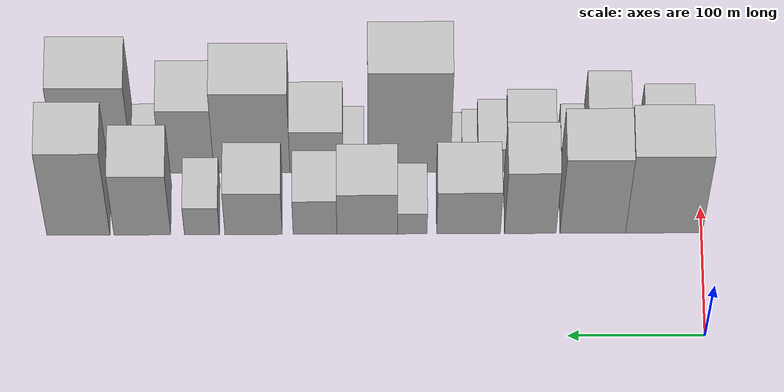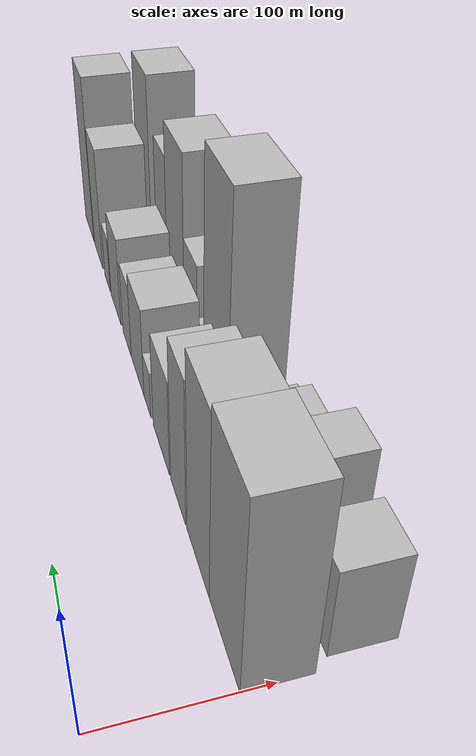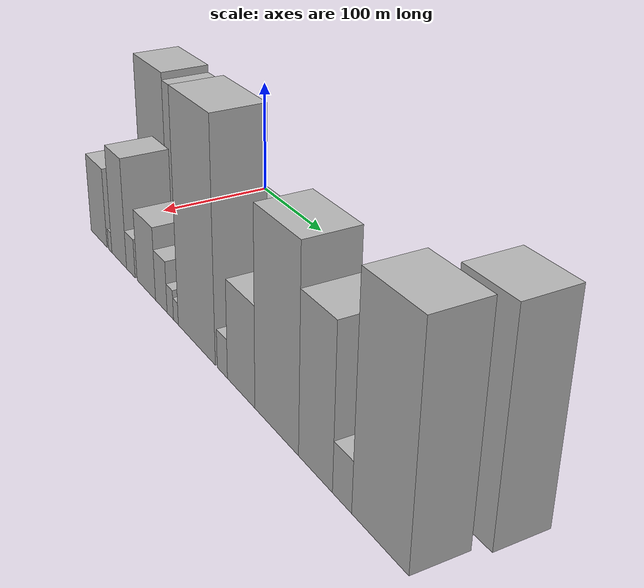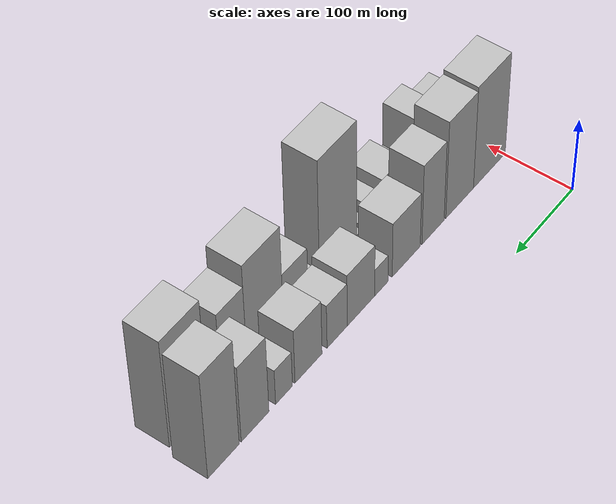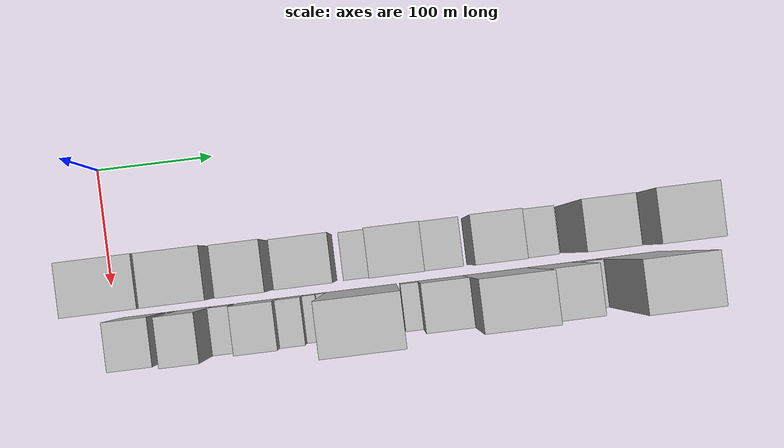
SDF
<sdf version="1.6">
 <world name="default">
  <model name="building_13">
   <static>1</static>
   <pose>100.0000 27.5827 0 0.000000 0.000000 0.000000</pose>
   <link name="link">
    <pose>0 0 72.00 0 0 0</pose>
    <collision name="collision"><geometry><box><size>40.0000 56.3216 144.0000</size></box></geometry></collision>
    <visual name="visual">
     <cast_shadows>0</cast_shadows>
     <geometry><box><size>40.0000 56.3216 144.0000</size></box></geometry>
     <material>
      <script>
       <uri>model://HANNAS_wall/materials/scripts</uri>
       <uri>model://HANNAS_wall/materials/textures</uri>
       <name>vrc/HANNAS_wall</name>
      </script>
     </material>
    </visual>
   </link>
  </model>
  <model name="building_14">
   <static>1</static>
   <pose>100.0000 79.7308 0 0.000000 0.000000 0.000000</pose>
   <link name="link">
    <pose>0 0 69.00 0 0 0</pose>
    <collision name="collision"><geometry><box><size>40.0000 47.9747 138.0000</size></box></geometry></collision>
    <visual name="visual">
     <cast_shadows>0</cast_shadows>
     <geometry><box><size>40.0000 47.9747 138.0000</size></box></geometry>
     <material>
      <script>
       <uri>model://HANNAS_wall/materials/scripts</uri>
       <uri>model://HANNAS_wall/materials/textures</uri>
       <name>vrc/HANNAS_wall</name>
      </script>
     </material>
    </visual>
   </link>
  </model>
  <model name="building_15">
   <static>1</static>
   <pose>100.0000 125.5755 0 0.000000 0.000000 0.000000</pose>
   <link name="link">
    <pose>0 0 57.00 0 0 0</pose>
    <collision name="collision"><geometry><box><size>40.0000 37.7146 114.0000</size></box></geometry></collision>
    <visual name="visual">
     <cast_shadows>0</cast_shadows>
     <geometry><box><size>40.0000 37.7146 114.0000</size></box></geometry>
     <material>
      <script>
       <uri>model://HANNAS_wall/materials/scripts</uri>
       <uri>model://HANNAS_wall/materials/textures</uri>
       <name>vrc/HANNAS_wall</name>
      </script>
     </material>
    </visual>
   </link>
  </model>
  <model name="building_16">
   <static>1</static>
   <pose>100.0000 170.7817 0 0.000000 0.000000 0.000000</pose>
   <link name="link">
    <pose>0 0 39.00 0 0 0</pose>
    <collision name="collision"><geometry><box><size>40.0000 46.6979 78.0000</size></box></geometry></collision>
    <visual name="visual">
     <cast_shadows>0</cast_shadows>
     <geometry><box><size>40.0000 46.6979 78.0000</size></box></geometry>
     <material>
      <script>
       <uri>model://HANNAS_wall/materials/scripts</uri>
       <uri>model://HANNAS_wall/materials/textures</uri>
       <name>vrc/HANNAS_wall</name>
      </script>
     </material>
    </visual>
   </link>
  </model>
  <model name="building_17">
   <static>1</static>
   <pose>100.0000 211.9710 0 0.000000 0.000000 0.000000</pose>
   <link name="link">
    <pose>0 0 19.50 0 0 0</pose>
    <collision name="collision"><geometry><box><size>40.0000 21.6807 39.0000</size></box></geometry></collision>
    <visual name="visual">
     <cast_shadows>0</cast_shadows>
     <geometry><box><size>40.0000 21.6807 39.0000</size></box></geometry>
     <material>
      <script>
       <uri>model://HANNAS_wall/materials/scripts</uri>
       <uri>model://HANNAS_wall/materials/textures</uri>
       <name>vrc/HANNAS_wall</name>
      </script>
     </material>
    </visual>
   </link>
  </model>
  <model name="building_18">
   <static>1</static>
   <pose>100.0000 244.9832 0 0.000000 0.000000 0.000000</pose>
   <link name="link">
    <pose>0 0 37.50 0 0 0</pose>
    <collision name="collision"><geometry><box><size>40.0000 44.3437 75.0000</size></box></geometry></collision>
    <visual name="visual">
     <cast_shadows>0</cast_shadows>
     <geometry><box><size>40.0000 44.3437 75.0000</size></box></geometry>
     <material>
      <script>
       <uri>model://HANNAS_wall/materials/scripts</uri>
       <uri>model://HANNAS_wall/materials/textures</uri>
       <name>vrc/HANNAS_wall</name>
      </script>
     </material>
    </visual>
   </link>
  </model>
  <model name="building_19">
   <static>1</static>
   <pose>100.0000 283.1671 0 0.000000 0.000000 0.000000</pose>
   <link name="link">
    <pose>0 0 31.50 0 0 0</pose>
    <collision name="collision"><geometry><box><size>40.0000 32.0240 63.0000</size></box></geometry></collision>
    <visual name="visual">
     <cast_shadows>0</cast_shadows>
     <geometry><box><size>40.0000 32.0240 63.0000</size></box></geometry>
     <material>
      <script>
       <uri>model://HANNAS_wall/materials/scripts</uri>
       <uri>model://HANNAS_wall/materials/textures</uri>
       <name>vrc/HANNAS_wall</name>
      </script>
     </material>
    </visual>
   </link>
  </model>
  <model name="building_20">
   <static>1</static>
   <pose>100.0000 328.1609 0 0.000000 0.000000 0.000000</pose>
   <link name="link">
    <pose>0 0 39.00 0 0 0</pose>
    <collision name="collision"><geometry><box><size>40.0000 41.9636 78.0000</size></box></geometry></collision>
    <visual name="visual">
     <cast_shadows>0</cast_shadows>
     <geometry><box><size>40.0000 41.9636 78.0000</size></box></geometry>
     <material>
      <script>
       <uri>model://HANNAS_wall/materials/scripts</uri>
       <uri>model://HANNAS_wall/materials/textures</uri>
       <name>vrc/HANNAS_wall</name>
      </script>
     </material>
    </visual>
   </link>
  </model>
  <model name="building_21">
   <static>1</static>
   <pose>100.0000 365.9833 0 0.000000 0.000000 0.000000</pose>
   <link name="link">
    <pose>0 0 25.50 0 0 0</pose>
    <collision name="collision"><geometry><box><size>40.0000 25.6811 51.0000</size></box></geometry></collision>
    <visual name="visual">
     <cast_shadows>0</cast_shadows>
     <geometry><box><size>40.0000 25.6811 51.0000</size></box></geometry>
     <material>
      <script>
       <uri>model://HANNAS_wall/materials/scripts</uri>
       <uri>model://HANNAS_wall/materials/textures</uri>
       <name>vrc/HANNAS_wall</name>
      </script>
     </material>
    </visual>
   </link>
  </model>
  <model name="building_22">
   <static>1</static>
   <pose>100.0000 409.6022 0 0.000000 0.000000 0.000000</pose>
   <link name="link">
    <pose>0 0 55.50 0 0 0</pose>
    <collision name="collision"><geometry><box><size>40.0000 41.5568 111.0000</size></box></geometry></collision>
    <visual name="visual">
     <cast_shadows>0</cast_shadows>
     <geometry><box><size>40.0000 41.5568 111.0000</size></box></geometry>
     <material>
      <script>
       <uri>model://HANNAS_wall/materials/scripts</uri>
       <uri>model://HANNAS_wall/materials/textures</uri>
       <name>vrc/HANNAS_wall</name>
      </script>
     </material>
    </visual>
   </link>
  </model>
  <model name="building_23">
   <static>1</static>
   <pose>100.0000 456.4711 0 0.000000 0.000000 0.000000</pose>
   <link name="link">
    <pose>0 0 76.50 0 0 0</pose>
    <collision name="collision"><geometry><box><size>40.0000 46.1808 153.0000</size></box></geometry></collision>
    <visual name="visual">
     <cast_shadows>0</cast_shadows>
     <geometry><box><size>40.0000 46.1808 153.0000</size></box></geometry>
     <material>
      <script>
       <uri>model://HANNAS_wall/materials/scripts</uri>
       <uri>model://HANNAS_wall/materials/textures</uri>
       <name>vrc/HANNAS_wall</name>
      </script>
     </material>
    </visual>
   </link>
  </model>
  <model name="building_36">
   <static>1</static>
   <pose>149.0000 24.8346 0 0.000000 0.000000 0.000000</pose>
   <link name="link">
    <pose>0 0 34.50 0 0 0</pose>
    <collision name="collision"><geometry><box><size>40.0000 36.5925 69.0000</size></box></geometry></collision>
    <visual name="visual">
     <cast_shadows>0</cast_shadows>
     <geometry><box><size>40.0000 36.5925 69.0000</size></box></geometry>
     <material>
      <script>
       <uri>model://HANNAS_wall/materials/scripts</uri>
       <uri>model://HANNAS_wall/materials/textures</uri>
       <name>vrc/HANNAS_wall</name>
      </script>
     </material>
    </visual>
   </link>
  </model>
  <model name="building_37">
   <static>1</static>
   <pose>149.0000 49.9843 0 0.000000 0.000000 0.000000</pose>
   <link name="link">
    <pose>0 0 9.00 0 0 0</pose>
    <collision name="collision"><geometry><box><size>40.0000 7.7069 18.0000</size></box></geometry></collision>
    <visual name="visual">
     <cast_shadows>0</cast_shadows>
     <geometry><box><size>40.0000 7.7069 18.0000</size></box></geometry>
     <material>
      <script>
       <uri>model://HANNAS_wall/materials/scripts</uri>
       <uri>model://HANNAS_wall/materials/textures</uri>
       <name>vrc/HANNAS_wall</name>
      </script>
     </material>
    </visual>
   </link>
  </model>
  <model name="building_38">
   <static>1</static>
   <pose>149.0000 69.5499 0 0.000000 0.000000 0.000000</pose>
   <link name="link">
    <pose>0 0 46.50 0 0 0</pose>
    <collision name="collision"><geometry><box><size>40.0000 31.4244 93.0000</size></box></geometry></collision>
    <visual name="visual">
     <cast_shadows>0</cast_shadows>
     <geometry><box><size>40.0000 31.4244 93.0000</size></box></geometry>
     <material>
      <script>
       <uri>model://HANNAS_wall/materials/scripts</uri>
       <uri>model://HANNAS_wall/materials/textures</uri>
       <name>vrc/HANNAS_wall</name>
      </script>
     </material>
    </visual>
   </link>
  </model>
  <model name="building_39">
   <static>1</static>
   <pose>149.0000 94.0365 0 0.000000 0.000000 0.000000</pose>
   <link name="link">
    <pose>0 0 16.50 0 0 0</pose>
    <collision name="collision"><geometry><box><size>40.0000 17.5487 33.0000</size></box></geometry></collision>
    <visual name="visual">
     <cast_shadows>0</cast_shadows>
     <geometry><box><size>40.0000 17.5487 33.0000</size></box></geometry>
     <material>
      <script>
       <uri>model://HANNAS_wall/materials/scripts</uri>
       <uri>model://HANNAS_wall/materials/textures</uri>
       <name>vrc/HANNAS_wall</name>
      </script>
     </material>
    </visual>
   </link>
  </model>
  <model name="building_40">
   <static>1</static>
   <pose>149.0000 124.6785 0 0.000000 0.000000 0.000000</pose>
   <link name="link">
    <pose>0 0 30.00 0 0 0</pose>
    <collision name="collision"><geometry><box><size>40.0000 35.7354 60.0000</size></box></geometry></collision>
    <visual name="visual">
     <cast_shadows>0</cast_shadows>
     <geometry><box><size>40.0000 35.7354 60.0000</size></box></geometry>
     <material>
      <script>
       <uri>model://HANNAS_wall/materials/scripts</uri>
       <uri>model://HANNAS_wall/materials/textures</uri>
       <name>vrc/HANNAS_wall</name>
      </script>
     </material>
    </visual>
   </link>
  </model>
  <model name="building_41">
   <static>1</static>
   <pose>149.0000 153.1768 0 0.000000 0.000000 0.000000</pose>
   <link name="link">
    <pose>0 0 21.00 0 0 0</pose>
    <collision name="collision"><geometry><box><size>40.0000 21.2614 42.0000</size></box></geometry></collision>
    <visual name="visual">
     <cast_shadows>0</cast_shadows>
     <geometry><box><size>40.0000 21.2614 42.0000</size></box></geometry>
     <material>
      <script>
       <uri>model://HANNAS_wall/materials/scripts</uri>
       <uri>model://HANNAS_wall/materials/textures</uri>
       <name>vrc/HANNAS_wall</name>
      </script>
     </material>
    </visual>
   </link>
  </model>
  <model name="building_42">
   <static>1</static>
   <pose>149.0000 169.4975 0 0.000000 0.000000 0.000000</pose>
   <link name="link">
    <pose>0 0 12.00 0 0 0</pose>
    <collision name="collision"><geometry><box><size>40.0000 11.3800 24.0000</size></box></geometry></collision>
    <visual name="visual">
     <cast_shadows>0</cast_shadows>
     <geometry><box><size>40.0000 11.3800 24.0000</size></box></geometry>
     <material>
      <script>
       <uri>model://HANNAS_wall/materials/scripts</uri>
       <uri>model://HANNAS_wall/materials/textures</uri>
       <name>vrc/HANNAS_wall</name>
      </script>
     </material>
    </visual>
   </link>
  </model>
  <model name="building_43">
   <static>1</static>
   <pose>149.0000 179.4573 0 0.000000 0.000000 0.000000</pose>
   <link name="link">
    <pose>0 0 9.00 0 0 0</pose>
    <collision name="collision"><geometry><box><size>40.0000 8.5397 18.0000</size></box></geometry></collision>
    <visual name="visual">
     <cast_shadows>0</cast_shadows>
     <geometry><box><size>40.0000 8.5397 18.0000</size></box></geometry>
     <material>
      <script>
       <uri>model://HANNAS_wall/materials/scripts</uri>
       <uri>model://HANNAS_wall/materials/textures</uri>
       <name>vrc/HANNAS_wall</name>
      </script>
     </material>
    </visual>
   </link>
  </model>
  <model name="building_44">
   <static>1</static>
   <pose>149.0000 214.0059 0 0.000000 0.000000 0.000000</pose>
   <link name="link">
    <pose>0 0 90.00 0 0 0</pose>
    <collision name="collision"><geometry><box><size>40.0000 60.5575 180.0000</size></box></geometry></collision>
    <visual name="visual">
     <cast_shadows>0</cast_shadows>
     <geometry><box><size>40.0000 60.5575 180.0000</size></box></geometry>
     <material>
      <script>
       <uri>model://HANNAS_wall/materials/scripts</uri>
       <uri>model://HANNAS_wall/materials/textures</uri>
       <name>vrc/HANNAS_wall</name>
      </script>
     </material>
    </visual>
   </link>
  </model>
  <model name="building_45">
   <static>1</static>
   <pose>149.0000 254.9012 0 0.000000 0.000000 0.000000</pose>
   <link name="link">
    <pose>0 0 15.00 0 0 0</pose>
    <collision name="collision"><geometry><box><size>40.0000 15.2331 30.0000</size></box></geometry></collision>
    <visual name="visual">
     <cast_shadows>0</cast_shadows>
     <geometry><box><size>40.0000 15.2331 30.0000</size></box></geometry>
     <material>
      <script>
       <uri>model://HANNAS_wall/materials/scripts</uri>
       <uri>model://HANNAS_wall/materials/textures</uri>
       <name>vrc/HANNAS_wall</name>
      </script>
     </material>
    </visual>
   </link>
  </model>
  <model name="building_46">
   <static>1</static>
   <pose>149.0000 282.0703 0 0.000000 0.000000 0.000000</pose>
   <link name="link">
    <pose>0 0 37.50 0 0 0</pose>
    <collision name="collision"><geometry><box><size>40.0000 39.1051 75.0000</size></box></geometry></collision>
    <visual name="visual">
     <cast_shadows>0</cast_shadows>
     <geometry><box><size>40.0000 39.1051 75.0000</size></box></geometry>
     <material>
      <script>
       <uri>model://HANNAS_wall/materials/scripts</uri>
       <uri>model://HANNAS_wall/materials/textures</uri>
       <name>vrc/HANNAS_wall</name>
      </script>
     </material>
    </visual>
   </link>
  </model>
  <model name="building_47">
   <static>1</static>
   <pose>149.0000 329.5947 0 0.000000 0.000000 0.000000</pose>
   <link name="link">
    <pose>0 0 72.00 0 0 0</pose>
    <collision name="collision"><geometry><box><size>40.0000 55.9437 144.0000</size></box></geometry></collision>
    <visual name="visual">
     <cast_shadows>0</cast_shadows>
     <geometry><box><size>40.0000 55.9437 144.0000</size></box></geometry>
     <material>
      <script>
       <uri>model://HANNAS_wall/materials/scripts</uri>
       <uri>model://HANNAS_wall/materials/textures</uri>
       <name>vrc/HANNAS_wall</name>
      </script>
     </material>
    </visual>
   </link>
  </model>
  <model name="building_48">
   <static>1</static>
   <pose>149.0000 377.0680 0 0.000000 0.000000 0.000000</pose>
   <link name="link">
    <pose>0 0 57.00 0 0 0</pose>
    <collision name="collision"><geometry><box><size>40.0000 39.0031 114.0000</size></box></geometry></collision>
    <visual name="visual">
     <cast_shadows>0</cast_shadows>
     <geometry><box><size>40.0000 39.0031 114.0000</size></box></geometry>
     <material>
      <script>
       <uri>model://HANNAS_wall/materials/scripts</uri>
       <uri>model://HANNAS_wall/materials/textures</uri>
       <name>vrc/HANNAS_wall</name>
      </script>
     </material>
    </visual>
   </link>
  </model>
  <model name="building_49">
   <static>1</static>
   <pose>149.0000 406.8442 0 0.000000 0.000000 0.000000</pose>
   <link name="link">
    <pose>0 0 18.00 0 0 0</pose>
    <collision name="collision"><geometry><box><size>40.0000 20.5492 36.0000</size></box></geometry></collision>
    <visual name="visual">
     <cast_shadows>0</cast_shadows>
     <geometry><box><size>40.0000 20.5492 36.0000</size></box></geometry>
     <material>
      <script>
       <uri>model://HANNAS_wall/materials/scripts</uri>
       <uri>model://HANNAS_wall/materials/textures</uri>
       <name>vrc/HANNAS_wall</name>
      </script>
     </material>
    </visual>
   </link>
  </model>
  <model name="building_50">
   <static>1</static>
   <pose>149.0000 444.9952 0 0.000000 0.000000 0.000000</pose>
   <link name="link">
    <pose>0 0 78.00 0 0 0</pose>
    <collision name="collision"><geometry><box><size>40.0000 55.7529 156.0000</size></box></geometry></collision>
    <visual name="visual">
     <cast_shadows>0</cast_shadows>
     <geometry><box><size>40.0000 55.7529 156.0000</size></box></geometry>
     <material>
      <script>
       <uri>model://HANNAS_wall/materials/scripts</uri>
       <uri>model://HANNAS_wall/materials/textures</uri>
       <name>vrc/HANNAS_wall</name>
      </script>
     </material>
    </visual>
   </link>
  </model>
 </world>
</sdf>
